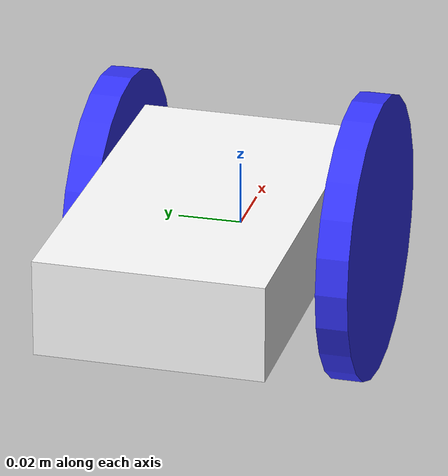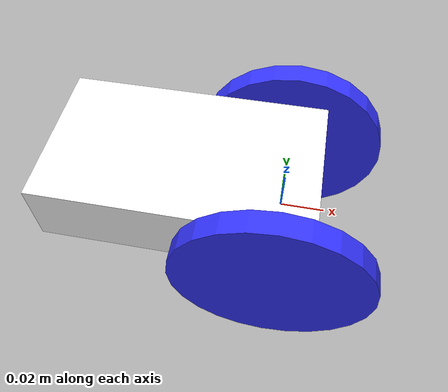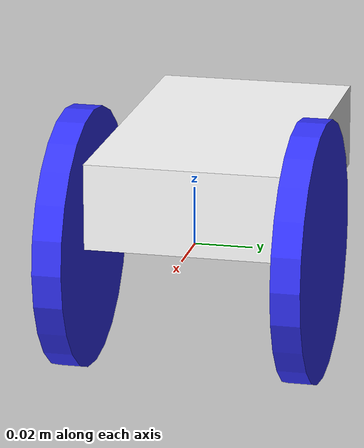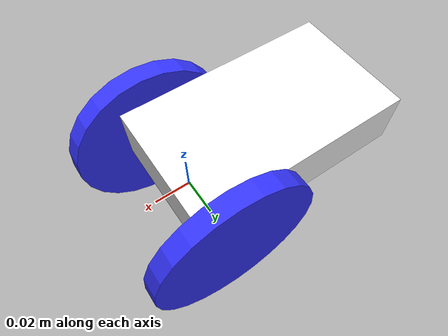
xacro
<?xml version="1.0"?>
<robot xmlns:xacro="http://www.ros.org/wiki/xacro" >

    <xacro:include filename="inertial_macros.xacro"/>

    <material name="white">
        <color rgba="1 1 1 1" />
    </material>

    <material name="orange">
        <color rgba="1 0.3 0.1 1" />
    </material>

    <material name="blue">
        <color rgba="0.2 0.2 1 1" />
    </material>

    <material name="black">
        <color rgba="0 0 0 1" />
    </material>

    <!-- BASE LINK -->

    <link name="base_link">

    </link>

    <!-- CHASSIS LINK -->
    <!-- x: front, y: left, z: up -->

    <joint name="chassis_joint" type="fixed">
        <parent link="base_link"/>
        <child link="chassis"/>
        <origin xyz="-0.105 0 0"/>
    </joint>

    <link name="chassis">
        <visual>
            <origin xyz="0.06 0 0.015"/>
            <geometry>
                <box size="0.12 0.07 0.03"/>
            </geometry>
            <material name="white"/>
        </visual>
        <collision>
            <origin xyz="0.06 0 0.015"/>
            <geometry>
                <box size="0.12 0.07 0.03"/>
            </geometry>
        </collision>
        <xacro:inertial_box mass="0.080" x="0.12" y="0.07" z="0.03">
            <origin xyz="0.06 0 0.015" rpy="0 0 0"/>
        </xacro:inertial_box>
    </link>

    <gazebo reference="chassis">
        <material>Gazebo/White</material>
        <!-- Make the chassis frictionless (make tails frictionless when the modelling is done) -->
        <mu1 value="0.001"/>
        <mu2 value="0.001"/>
    </gazebo>

    <!-- LEFT WHEEL LINK -->

    <joint name="left_wheel_joint" type="continuous">
        <parent link="base_link"/>
        <child link="left_wheel"/>
        <origin xyz="0 0.04 0" rpy="-${pi/2} 0 0"/>
        <axis xyz="0 0 1"/>
    </joint>

    <link name="left_wheel">
        <visual>
            <geometry>
                <cylinder radius="0.045" length="0.01"/>
            </geometry>
            <material name="blue"/>
        </visual>
        <collision>
            <geometry>
                <cylinder radius="0.045" length="0.01"/>
            </geometry>
        </collision>
        <xacro:inertial_cylinder mass="0.013" length="0.01" radius="0.045">
            <origin xyz="0 0 0" rpy="0 0 0"/>
        </xacro:inertial_cylinder>
    </link>

    <gazebo reference="left_wheel">
        <material>Gazebo/Blue</material>
    </gazebo>

    <!-- RIGHT WHEEL LINK -->

    <joint name="right_wheel_joint" type="continuous">
        <parent link="base_link"/>
        <child link="right_wheel"/>
        <origin xyz="0 -0.04 0" rpy="${pi/2} 0 0"/>
        <axis xyz="0 0 -1"/>
    </joint>

    <link name="right_wheel">
        <visual>
            <geometry>
                <cylinder radius="0.045" length="0.01"/>
            </geometry>
            <material name="blue"/>
        </visual>
        <collision>
            <geometry>
                <cylinder radius="0.045" length="0.01"/>
            </geometry>
        </collision>
        <xacro:inertial_cylinder mass="0.013" length="0.01" radius="0.045">
            <origin xyz="0 0 0" rpy="0 0 0"/>
        </xacro:inertial_cylinder>
    </link>

    <gazebo reference="right_wheel">
        <material>Gazebo/Blue</material>
    </gazebo>

    <!-- CASTER WHEEL LINK -->
    <!-- no need. maybe add the tail instead later. -->

</robot>
